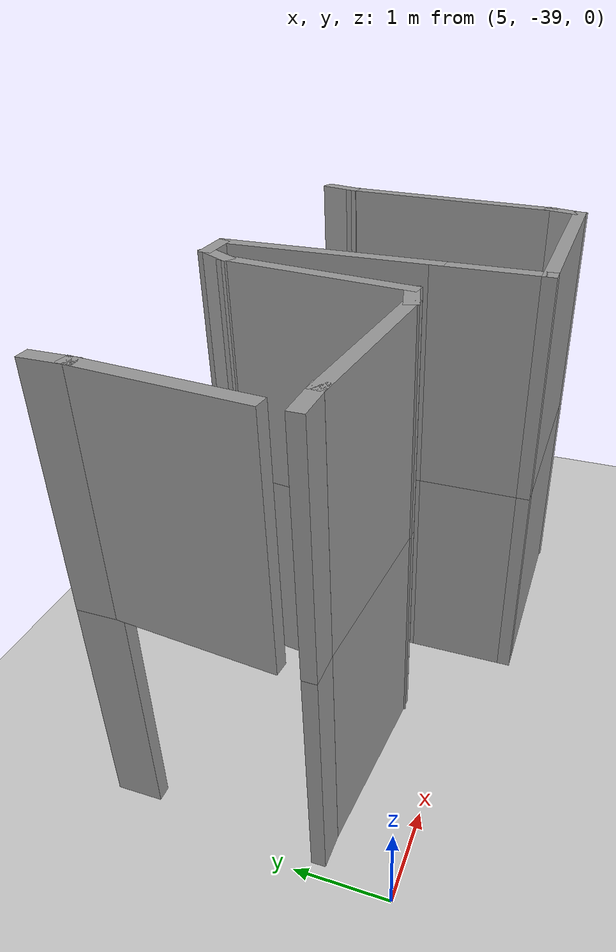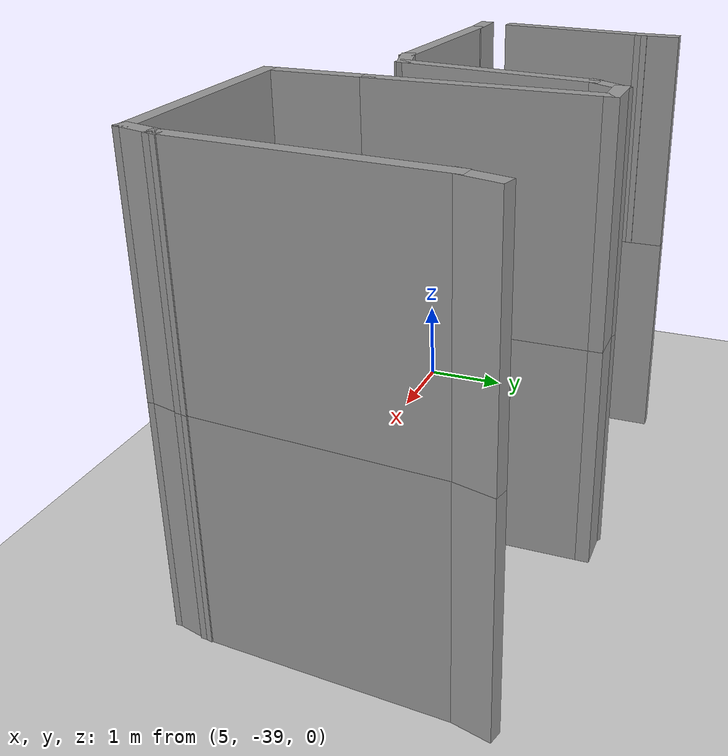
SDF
<sdf version="1.7">
 <world name="default">
  <model name="ground_plane">
   <static>1</static>
   <link name="link">
    <collision name="collision">
     <geometry><plane><normal>0 0 1</normal><size>100 100</size></plane></geometry>
     <surface>
      <contact><collide_bitmask>65535</collide_bitmask></contact>
      <friction><ode><mu>100</mu><mu2>50</mu2></ode></friction>
     </surface>
    </collision>
    <visual name="visual">
     <cast_shadows>0</cast_shadows>
     <geometry><plane><normal>0 0 1</normal><size>100 100</size></plane></geometry>
     <material>
      <script><uri>file://media/materials/scripts/gazebo.material</uri><name>Gazebo/Grey</name></script>
     </material>
    </visual>
   </link>
  </model>
  <model name="EnvDC01">
   <link name="Wall_219">
    <pose>4.62798 -30.0776 0 0 0 -1.8326</pose>
    <visual name="Wall_219_Visual">
     <pose>0 0 1.25 0 -0 0</pose>
     <geometry><box><size>0.5 0.15 2.5</size></box></geometry>
     <material>
      <script><uri>file://media/materials/scripts/gazebo.material</uri><name>Gazebo/Grey</name></script>
      <ambient>1 1 1 1</ambient>
      <shader type="pixel"/>
     </material>
     <meta><layer>0</layer></meta>
    </visual>
    <collision name="Wall_219_Collision">
     <pose>0 0 1.25 0 -0 0</pose>
     <geometry><box><size>0.5 0.15 2.5</size></box></geometry>
     <surface>
      <friction>
       <ode><mu>1</mu><mu2>1</mu2><fdir1>0 0 0</fdir1><slip1>0</slip1><slip2>0</slip2></ode>
       <torsional>
        <coefficient>1</coefficient>
        <patch_radius>0</patch_radius>
        <surface_radius>0</surface_radius>
        <use_patch_radius>1</use_patch_radius>
        <ode><slip>0</slip></ode>
       </torsional>
      </friction>
      <bounce><restitution_coefficient>0</restitution_coefficient><threshold>1e+06</threshold></bounce>
      <contact>
       <collide_without_contact>0</collide_without_contact>
       <collide_without_contact_bitmask>1</collide_without_contact_bitmask>
       <collide_bitmask>1</collide_bitmask>
       <ode>
        <soft_cfm>0</soft_cfm>
        <soft_erp>0.2</soft_erp>
        <kp>1e+13</kp>
        <kd>1</kd>
        <max_vel>0.01</max_vel>
        <min_depth>0</min_depth>
       </ode>
       <bullet>
        <split_impulse>1</split_impulse>
        <split_impulse_penetration_threshold>-0.01</split_impulse_penetration_threshold>
        <soft_cfm>0</soft_cfm>
        <soft_erp>0.2</soft_erp>
        <kp>1e+13</kp>
        <kd>1</kd>
       </bullet>
      </contact>
     </surface>
    </collision>
   </link>
   <link name="Wall_220">
    <pose>4.48563 -31.5338 0 0 0 -1.64605</pose>
    <visual name="Wall_220_Visual">
     <pose>0 0 1.25 0 -0 0</pose>
     <geometry><box><size>2.73175 0.15 2.5</size></box></geometry>
     <material>
      <script><uri>file://media/materials/scripts/gazebo.material</uri><name>Gazebo/Grey</name></script>
      <ambient>1 1 1 1</ambient>
      <shader type="pixel"/>
     </material>
     <meta><layer>0</layer></meta>
    </visual>
    <collision name="Wall_220_Collision">
     <pose>0 0 1.25 0 -0 0</pose>
     <geometry><box><size>2.73175 0.15 2.5</size></box></geometry>
     <surface>
      <friction>
       <ode><mu>1</mu><mu2>1</mu2><fdir1>0 0 0</fdir1><slip1>0</slip1><slip2>0</slip2></ode>
       <torsional>
        <coefficient>1</coefficient>
        <patch_radius>0</patch_radius>
        <surface_radius>0</surface_radius>
        <use_patch_radius>1</use_patch_radius>
        <ode><slip>0</slip></ode>
       </torsional>
      </friction>
      <bounce><restitution_coefficient>0</restitution_coefficient><threshold>1e+06</threshold></bounce>
      <contact>
       <collide_without_contact>0</collide_without_contact>
       <collide_without_contact_bitmask>1</collide_without_contact_bitmask>
       <collide_bitmask>1</collide_bitmask>
       <ode>
        <soft_cfm>0</soft_cfm>
        <soft_erp>0.2</soft_erp>
        <kp>1e+13</kp>
        <kd>1</kd>
        <max_vel>0.01</max_vel>
        <min_depth>0</min_depth>
       </ode>
       <bullet>
        <split_impulse>1</split_impulse>
        <split_impulse_penetration_threshold>-0.01</split_impulse_penetration_threshold>
        <soft_cfm>0</soft_cfm>
        <soft_erp>0.2</soft_erp>
        <kp>1e+13</kp>
        <kd>1</kd>
       </bullet>
      </contact>
     </surface>
    </collision>
   </link>
   <link name="Wall_221">
    <pose>4.34328 -32.9901 0 0 0 -1.8326</pose>
    <visual name="Wall_221_Visual">
     <pose>0 0 1.25 0 -0 0</pose>
     <geometry><box><size>0.5 0.15 2.5</size></box></geometry>
     <material>
      <script><uri>file://media/materials/scripts/gazebo.material</uri><name>Gazebo/Grey</name></script>
      <ambient>1 1 1 1</ambient>
      <shader type="pixel"/>
     </material>
     <meta><layer>0</layer></meta>
    </visual>
    <collision name="Wall_221_Collision">
     <pose>0 0 1.25 0 -0 0</pose>
     <geometry><box><size>0.5 0.15 2.5</size></box></geometry>
     <surface>
      <friction>
       <ode><mu>1</mu><mu2>1</mu2><fdir1>0 0 0</fdir1><slip1>0</slip1><slip2>0</slip2></ode>
       <torsional>
        <coefficient>1</coefficient>
        <patch_radius>0</patch_radius>
        <surface_radius>0</surface_radius>
        <use_patch_radius>1</use_patch_radius>
        <ode><slip>0</slip></ode>
       </torsional>
      </friction>
      <bounce><restitution_coefficient>0</restitution_coefficient><threshold>1e+06</threshold></bounce>
      <contact>
       <collide_without_contact>0</collide_without_contact>
       <collide_without_contact_bitmask>1</collide_without_contact_bitmask>
       <collide_bitmask>1</collide_bitmask>
       <ode>
        <soft_cfm>0</soft_cfm>
        <soft_erp>0.2</soft_erp>
        <kp>1e+13</kp>
        <kd>1</kd>
        <max_vel>0.01</max_vel>
        <min_depth>0</min_depth>
       </ode>
       <bullet>
        <split_impulse>1</split_impulse>
        <split_impulse_penetration_threshold>-0.01</split_impulse_penetration_threshold>
        <soft_cfm>0</soft_cfm>
        <soft_erp>0.2</soft_erp>
        <kp>1e+13</kp>
        <kd>1</kd>
       </bullet>
      </contact>
     </surface>
    </collision>
   </link>
   <link name="Wall_222">
    <pose>3.12299 -33.1591 0 0 -0 3.14159</pose>
    <visual name="Wall_222_Visual">
     <pose>0 0 1.25 0 -0 0</pose>
     <geometry><box><size>2.5 0.15 2.5</size></box></geometry>
     <material>
      <script><uri>file://media/materials/scripts/gazebo.material</uri><name>Gazebo/Grey</name></script>
      <ambient>1 1 1 1</ambient>
      <shader type="pixel"/>
     </material>
     <meta><layer>0</layer></meta>
    </visual>
    <collision name="Wall_222_Collision">
     <pose>0 0 1.25 0 -0 0</pose>
     <geometry><box><size>2.5 0.15 2.5</size></box></geometry>
     <surface>
      <friction>
       <ode><mu>1</mu><mu2>1</mu2><fdir1>0 0 0</fdir1><slip1>0</slip1><slip2>0</slip2></ode>
       <torsional>
        <coefficient>1</coefficient>
        <patch_radius>0</patch_radius>
        <surface_radius>0</surface_radius>
        <use_patch_radius>1</use_patch_radius>
        <ode><slip>0</slip></ode>
       </torsional>
      </friction>
      <bounce><restitution_coefficient>0</restitution_coefficient><threshold>1e+06</threshold></bounce>
      <contact>
       <collide_without_contact>0</collide_without_contact>
       <collide_without_contact_bitmask>1</collide_without_contact_bitmask>
       <collide_bitmask>1</collide_bitmask>
       <ode>
        <soft_cfm>0</soft_cfm>
        <soft_erp>0.2</soft_erp>
        <kp>1e+13</kp>
        <kd>1</kd>
        <max_vel>0.01</max_vel>
        <min_depth>0</min_depth>
       </ode>
       <bullet>
        <split_impulse>1</split_impulse>
        <split_impulse_penetration_threshold>-0.01</split_impulse_penetration_threshold>
        <soft_cfm>0</soft_cfm>
        <soft_erp>0.2</soft_erp>
        <kp>1e+13</kp>
        <kd>1</kd>
       </bullet>
      </contact>
     </surface>
    </collision>
   </link>
   <link name="Wall_223">
    <pose>1.94799 -32.6091 0 0 -0 1.5708</pose>
    <visual name="Wall_223_Visual">
     <pose>0 0 1.25 0 -0 0</pose>
     <geometry><box><size>1.25 0.15 2.5</size></box></geometry>
     <material>
      <script><uri>file://media/materials/scripts/gazebo.material</uri><name>Gazebo/Grey</name></script>
      <ambient>1 1 1 1</ambient>
      <shader type="pixel"/>
     </material>
     <meta><layer>0</layer></meta>
    </visual>
    <collision name="Wall_223_Collision">
     <pose>0 0 1.25 0 -0 0</pose>
     <geometry><box><size>1.25 0.15 2.5</size></box></geometry>
     <surface>
      <friction>
       <ode><mu>1</mu><mu2>1</mu2><fdir1>0 0 0</fdir1><slip1>0</slip1><slip2>0</slip2></ode>
       <torsional>
        <coefficient>1</coefficient>
        <patch_radius>0</patch_radius>
        <surface_radius>0</surface_radius>
        <use_patch_radius>1</use_patch_radius>
        <ode><slip>0</slip></ode>
       </torsional>
      </friction>
      <bounce><restitution_coefficient>0</restitution_coefficient><threshold>1e+06</threshold></bounce>
      <contact>
       <collide_without_contact>0</collide_without_contact>
       <collide_without_contact_bitmask>1</collide_without_contact_bitmask>
       <collide_bitmask>1</collide_bitmask>
       <ode>
        <soft_cfm>0</soft_cfm>
        <soft_erp>0.2</soft_erp>
        <kp>1e+13</kp>
        <kd>1</kd>
        <max_vel>0.01</max_vel>
        <min_depth>0</min_depth>
       </ode>
       <bullet>
        <split_impulse>1</split_impulse>
        <split_impulse_penetration_threshold>-0.01</split_impulse_penetration_threshold>
        <soft_cfm>0</soft_cfm>
        <soft_erp>0.2</soft_erp>
        <kp>1e+13</kp>
        <kd>1</kd>
       </bullet>
      </contact>
     </surface>
    </collision>
   </link>
   <link name="Wall_224">
    <pose>1.94799 -30.8841 0 0 -0 1.5708</pose>
    <visual name="Wall_224_Visual">
     <pose>0 0 1.25 0 -0 0</pose>
     <geometry><box><size>2.5 0.15 2.5</size></box></geometry>
     <material>
      <script><uri>file://media/materials/scripts/gazebo.material</uri><name>Gazebo/Grey</name></script>
      <ambient>1 1 1 1</ambient>
      <shader type="pixel"/>
     </material>
     <meta><layer>0</layer></meta>
    </visual>
    <collision name="Wall_224_Collision">
     <pose>0 0 1.25 0 -0 0</pose>
     <geometry><box><size>2.5 0.15 2.5</size></box></geometry>
     <surface>
      <friction>
       <ode><mu>1</mu><mu2>1</mu2><fdir1>0 0 0</fdir1><slip1>0</slip1><slip2>0</slip2></ode>
       <torsional>
        <coefficient>1</coefficient>
        <patch_radius>0</patch_radius>
        <surface_radius>0</surface_radius>
        <use_patch_radius>1</use_patch_radius>
        <ode><slip>0</slip></ode>
       </torsional>
      </friction>
      <bounce><restitution_coefficient>0</restitution_coefficient><threshold>1e+06</threshold></bounce>
      <contact>
       <collide_without_contact>0</collide_without_contact>
       <collide_without_contact_bitmask>1</collide_without_contact_bitmask>
       <collide_bitmask>1</collide_bitmask>
       <ode>
        <soft_cfm>0</soft_cfm>
        <soft_erp>0.2</soft_erp>
        <kp>1e+13</kp>
        <kd>1</kd>
        <max_vel>0.01</max_vel>
        <min_depth>0</min_depth>
       </ode>
       <bullet>
        <split_impulse>1</split_impulse>
        <split_impulse_penetration_threshold>-0.01</split_impulse_penetration_threshold>
        <soft_cfm>0</soft_cfm>
        <soft_erp>0.2</soft_erp>
        <kp>1e+13</kp>
        <kd>1</kd>
       </bullet>
      </contact>
     </surface>
    </collision>
   </link>
   <link name="Wall_227">
    <pose>1.77299 -29.7091 0 0 -0 3.14159</pose>
    <visual name="Wall_227_Visual">
     <pose>0 0 1.25 0 -0 0</pose>
     <geometry><box><size>0.5 0.15 2.5</size></box></geometry>
     <material>
      <script><uri>file://media/materials/scripts/gazebo.material</uri><name>Gazebo/Grey</name></script>
      <ambient>1 1 1 1</ambient>
      <shader type="pixel"/>
     </material>
     <meta><layer>0</layer></meta>
    </visual>
    <collision name="Wall_227_Collision">
     <pose>0 0 1.25 0 -0 0</pose>
     <geometry><box><size>0.5 0.15 2.5</size></box></geometry>
     <surface>
      <friction>
       <ode><mu>1</mu><mu2>1</mu2><fdir1>0 0 0</fdir1><slip1>0</slip1><slip2>0</slip2></ode>
       <torsional>
        <coefficient>1</coefficient>
        <patch_radius>0</patch_radius>
        <surface_radius>0</surface_radius>
        <use_patch_radius>1</use_patch_radius>
        <ode><slip>0</slip></ode>
       </torsional>
      </friction>
      <bounce><restitution_coefficient>0</restitution_coefficient><threshold>1e+06</threshold></bounce>
      <contact>
       <collide_without_contact>0</collide_without_contact>
       <collide_without_contact_bitmask>1</collide_without_contact_bitmask>
       <collide_bitmask>1</collide_bitmask>
       <ode>
        <soft_cfm>0</soft_cfm>
        <soft_erp>0.2</soft_erp>
        <kp>1e+13</kp>
        <kd>1</kd>
        <max_vel>0.01</max_vel>
        <min_depth>0</min_depth>
       </ode>
       <bullet>
        <split_impulse>1</split_impulse>
        <split_impulse_penetration_threshold>-0.01</split_impulse_penetration_threshold>
        <soft_cfm>0</soft_cfm>
        <soft_erp>0.2</soft_erp>
        <kp>1e+13</kp>
        <kd>1</kd>
       </bullet>
      </contact>
     </surface>
    </collision>
   </link>
   <link name="Wall_228">
    <pose>1.51049 -29.8607 0 0 0 -2.0944</pose>
    <visual name="Wall_228_Visual">
     <pose>0 0 1.25 0 -0 0</pose>
     <geometry><box><size>0.5 0.15 2.5</size></box></geometry>
     <material>
      <script><uri>file://media/materials/scripts/gazebo.material</uri><name>Gazebo/Grey</name></script>
      <ambient>1 1 1 1</ambient>
      <shader type="pixel"/>
     </material>
     <meta><layer>0</layer></meta>
    </visual>
    <collision name="Wall_228_Collision">
     <pose>0 0 1.25 0 -0 0</pose>
     <geometry><box><size>0.5 0.15 2.5</size></box></geometry>
     <surface>
      <friction>
       <ode><mu>1</mu><mu2>1</mu2><fdir1>0 0 0</fdir1><slip1>0</slip1><slip2>0</slip2></ode>
       <torsional>
        <coefficient>1</coefficient>
        <patch_radius>0</patch_radius>
        <surface_radius>0</surface_radius>
        <use_patch_radius>1</use_patch_radius>
        <ode><slip>0</slip></ode>
       </torsional>
      </friction>
      <bounce><restitution_coefficient>0</restitution_coefficient><threshold>1e+06</threshold></bounce>
      <contact>
       <collide_without_contact>0</collide_without_contact>
       <collide_without_contact_bitmask>1</collide_without_contact_bitmask>
       <collide_bitmask>1</collide_bitmask>
       <ode>
        <soft_cfm>0</soft_cfm>
        <soft_erp>0.2</soft_erp>
        <kp>1e+13</kp>
        <kd>1</kd>
        <max_vel>0.01</max_vel>
        <min_depth>0</min_depth>
       </ode>
       <bullet>
        <split_impulse>1</split_impulse>
        <split_impulse_penetration_threshold>-0.01</split_impulse_penetration_threshold>
        <soft_cfm>0</soft_cfm>
        <soft_erp>0.2</soft_erp>
        <kp>1e+13</kp>
        <kd>1</kd>
       </bullet>
      </contact>
     </surface>
    </collision>
   </link>
   <link name="Wall_229">
    <pose>1.29203 -31.0169 0 0 0 -1.70042</pose>
    <visual name="Wall_229_Visual">
     <pose>0 0 1.25 0 -0 0</pose>
     <geometry><box><size>2.17641 0.15 2.5</size></box></geometry>
     <material>
      <script><uri>file://media/materials/scripts/gazebo.material</uri><name>Gazebo/Grey</name></script>
      <ambient>1 1 1 1</ambient>
      <shader type="pixel"/>
     </material>
     <meta><layer>0</layer></meta>
    </visual>
    <collision name="Wall_229_Collision">
     <pose>0 0 1.25 0 -0 0</pose>
     <geometry><box><size>2.17641 0.15 2.5</size></box></geometry>
     <surface>
      <friction>
       <ode><mu>1</mu><mu2>1</mu2><fdir1>0 0 0</fdir1><slip1>0</slip1><slip2>0</slip2></ode>
       <torsional>
        <coefficient>1</coefficient>
        <patch_radius>0</patch_radius>
        <surface_radius>0</surface_radius>
        <use_patch_radius>1</use_patch_radius>
        <ode><slip>0</slip></ode>
       </torsional>
      </friction>
      <bounce><restitution_coefficient>0</restitution_coefficient><threshold>1e+06</threshold></bounce>
      <contact>
       <collide_without_contact>0</collide_without_contact>
       <collide_without_contact_bitmask>1</collide_without_contact_bitmask>
       <collide_bitmask>1</collide_bitmask>
       <ode>
        <soft_cfm>0</soft_cfm>
        <soft_erp>0.2</soft_erp>
        <kp>1e+13</kp>
        <kd>1</kd>
        <max_vel>0.01</max_vel>
        <min_depth>0</min_depth>
       </ode>
       <bullet>
        <split_impulse>1</split_impulse>
        <split_impulse_penetration_threshold>-0.01</split_impulse_penetration_threshold>
        <soft_cfm>0</soft_cfm>
        <soft_erp>0.2</soft_erp>
        <kp>1e+13</kp>
        <kd>1</kd>
       </bullet>
      </contact>
     </surface>
    </collision>
   </link>
   <link name="Wall_230">
    <pose>0.992028 -32.0669 0 0 0 -2.87979</pose>
    <visual name="Wall_230_Visual">
     <pose>0 0 1.25 0 -0 0</pose>
     <geometry><box><size>0.5 0.15 2.5</size></box></geometry>
     <material>
      <script><uri>file://media/materials/scripts/gazebo.material</uri><name>Gazebo/Grey</name></script>
      <ambient>1 1 1 1</ambient>
      <shader type="pixel"/>
     </material>
     <meta><layer>0</layer></meta>
    </visual>
    <collision name="Wall_230_Collision">
     <pose>0 0 1.25 0 -0 0</pose>
     <geometry><box><size>0.5 0.15 2.5</size></box></geometry>
     <surface>
      <friction>
       <ode><mu>1</mu><mu2>1</mu2><fdir1>0 0 0</fdir1><slip1>0</slip1><slip2>0</slip2></ode>
       <torsional>
        <coefficient>1</coefficient>
        <patch_radius>0</patch_radius>
        <surface_radius>0</surface_radius>
        <use_patch_radius>1</use_patch_radius>
        <ode><slip>0</slip></ode>
       </torsional>
      </friction>
      <bounce><restitution_coefficient>0</restitution_coefficient><threshold>1e+06</threshold></bounce>
      <contact>
       <collide_without_contact>0</collide_without_contact>
       <collide_without_contact_bitmask>1</collide_without_contact_bitmask>
       <collide_bitmask>1</collide_bitmask>
       <ode>
        <soft_cfm>0</soft_cfm>
        <soft_erp>0.2</soft_erp>
        <kp>1e+13</kp>
        <kd>1</kd>
        <max_vel>0.01</max_vel>
        <min_depth>0</min_depth>
       </ode>
       <bullet>
        <split_impulse>1</split_impulse>
        <split_impulse_penetration_threshold>-0.01</split_impulse_penetration_threshold>
        <soft_cfm>0</soft_cfm>
        <soft_erp>0.2</soft_erp>
        <kp>1e+13</kp>
        <kd>1</kd>
       </bullet>
      </contact>
     </surface>
    </collision>
   </link>
   <link name="Wall_232">
    <pose>-0.088565 -32.041 0 0 -0 3.06364</pose>
    <visual name="Wall_232_Visual">
     <pose>0 0 1.25 0 -0 0</pose>
     <geometry><box><size>1.97866 0.15 2.5</size></box></geometry>
     <material>
      <script><uri>file://media/materials/scripts/gazebo.material</uri><name>Gazebo/Grey</name></script>
      <ambient>1 1 1 1</ambient>
      <shader type="pixel"/>
     </material>
     <meta><layer>0</layer></meta>
    </visual>
    <collision name="Wall_232_Collision">
     <pose>0 0 1.25 0 -0 0</pose>
     <geometry><box><size>1.97866 0.15 2.5</size></box></geometry>
     <surface>
      <friction>
       <ode><mu>1</mu><mu2>1</mu2><fdir1>0 0 0</fdir1><slip1>0</slip1><slip2>0</slip2></ode>
       <torsional>
        <coefficient>1</coefficient>
        <patch_radius>0</patch_radius>
        <surface_radius>0</surface_radius>
        <use_patch_radius>1</use_patch_radius>
        <ode><slip>0</slip></ode>
       </torsional>
      </friction>
      <bounce><restitution_coefficient>0</restitution_coefficient><threshold>1e+06</threshold></bounce>
      <contact>
       <collide_without_contact>0</collide_without_contact>
       <collide_without_contact_bitmask>1</collide_without_contact_bitmask>
       <collide_bitmask>1</collide_bitmask>
       <ode>
        <soft_cfm>0</soft_cfm>
        <soft_erp>0.2</soft_erp>
        <kp>1e+13</kp>
        <kd>1</kd>
        <max_vel>0.01</max_vel>
        <min_depth>0</min_depth>
       </ode>
       <bullet>
        <split_impulse>1</split_impulse>
        <split_impulse_penetration_threshold>-0.01</split_impulse_penetration_threshold>
        <soft_cfm>0</soft_cfm>
        <soft_erp>0.2</soft_erp>
        <kp>1e+13</kp>
        <kd>1</kd>
       </bullet>
      </contact>
     </surface>
    </collision>
   </link>
   <link name="Wall_233">
    <pose>-1.17512 -31.9634 0 0 -0 3.14159</pose>
    <visual name="Wall_233_Visual">
     <pose>0 0 1.25 0 -0 0</pose>
     <geometry><box><size>0.5 0.15 2.5</size></box></geometry>
     <material>
      <script><uri>file://media/materials/scripts/gazebo.material</uri><name>Gazebo/Grey</name></script>
      <ambient>1 1 1 1</ambient>
      <shader type="pixel"/>
     </material>
     <meta><layer>0</layer></meta>
    </visual>
    <collision name="Wall_233_Collision">
     <pose>0 0 1.25 0 -0 0</pose>
     <geometry><box><size>0.5 0.15 2.5</size></box></geometry>
     <surface>
      <friction>
       <ode><mu>1</mu><mu2>1</mu2><fdir1>0 0 0</fdir1><slip1>0</slip1><slip2>0</slip2></ode>
       <torsional>
        <coefficient>1</coefficient>
        <patch_radius>0</patch_radius>
        <surface_radius>0</surface_radius>
        <use_patch_radius>1</use_patch_radius>
        <ode><slip>0</slip></ode>
       </torsional>
      </friction>
      <bounce><restitution_coefficient>0</restitution_coefficient><threshold>1e+06</threshold></bounce>
      <contact>
       <collide_without_contact>0</collide_without_contact>
       <collide_without_contact_bitmask>1</collide_without_contact_bitmask>
       <collide_bitmask>1</collide_bitmask>
       <ode>
        <soft_cfm>0</soft_cfm>
        <soft_erp>0.2</soft_erp>
        <kp>1e+13</kp>
        <kd>1</kd>
        <max_vel>0.01</max_vel>
        <min_depth>0</min_depth>
       </ode>
       <bullet>
        <split_impulse>1</split_impulse>
        <split_impulse_penetration_threshold>-0.01</split_impulse_penetration_threshold>
        <soft_cfm>0</soft_cfm>
        <soft_erp>0.2</soft_erp>
        <kp>1e+13</kp>
        <kd>1</kd>
       </bullet>
      </contact>
     </surface>
    </collision>
   </link>
   <link name="Wall_237">
    <pose>-1.19483 -29.8588 0 0 -0 1.5708</pose>
    <visual name="Wall_237_Visual">
     <pose>0 0 1.25 0 -0 0</pose>
     <geometry><box><size>0.5 0.15 2.5</size></box></geometry>
     <material>
      <script><uri>file://media/materials/scripts/gazebo.material</uri><name>Gazebo/Grey</name></script>
      <ambient>1 1 1 1</ambient>
      <shader type="pixel"/>
     </material>
     <meta><layer>0</layer></meta>
    </visual>
    <collision name="Wall_237_Collision">
     <pose>0 0 1.25 0 -0 0</pose>
     <geometry><box><size>0.5 0.15 2.5</size></box></geometry>
     <surface>
      <friction>
       <ode><mu>1</mu><mu2>1</mu2><fdir1>0 0 0</fdir1><slip1>0</slip1><slip2>0</slip2></ode>
       <torsional>
        <coefficient>1</coefficient>
        <patch_radius>0</patch_radius>
        <surface_radius>0</surface_radius>
        <use_patch_radius>1</use_patch_radius>
        <ode><slip>0</slip></ode>
       </torsional>
      </friction>
      <bounce><restitution_coefficient>0</restitution_coefficient><threshold>1e+06</threshold></bounce>
      <contact>
       <collide_without_contact>0</collide_without_contact>
       <collide_without_contact_bitmask>1</collide_without_contact_bitmask>
       <collide_bitmask>1</collide_bitmask>
       <ode>
        <soft_cfm>0</soft_cfm>
        <soft_erp>0.2</soft_erp>
        <kp>1e+13</kp>
        <kd>1</kd>
        <max_vel>0.01</max_vel>
        <min_depth>0</min_depth>
       </ode>
       <bullet>
        <split_impulse>1</split_impulse>
        <split_impulse_penetration_threshold>-0.01</split_impulse_penetration_threshold>
        <soft_cfm>0</soft_cfm>
        <soft_erp>0.2</soft_erp>
        <kp>1e+13</kp>
        <kd>1</kd>
       </bullet>
      </contact>
     </surface>
    </collision>
   </link>
   <link name="Wall_389">
    <pose>4.62798 -30.0776 2.5 0 0 -1.8326</pose>
    <visual name="Wall_389_Visual">
     <pose>0 0 1.25 0 -0 0</pose>
     <geometry><box><size>0.5 0.15 2.5</size></box></geometry>
     <material>
      <script><uri>file://media/materials/scripts/gazebo.material</uri><name>Gazebo/Grey</name></script>
      <ambient>1 1 1 1</ambient>
      <shader type="pixel"/>
     </material>
     <meta><layer>1</layer></meta>
    </visual>
    <collision name="Wall_389_Collision">
     <pose>0 0 1.25 0 -0 0</pose>
     <geometry><box><size>0.5 0.15 2.5</size></box></geometry>
     <surface>
      <friction>
       <ode><mu>1</mu><mu2>1</mu2><fdir1>0 0 0</fdir1><slip1>0</slip1><slip2>0</slip2></ode>
       <torsional>
        <coefficient>1</coefficient>
        <patch_radius>0</patch_radius>
        <surface_radius>0</surface_radius>
        <use_patch_radius>1</use_patch_radius>
        <ode><slip>0</slip></ode>
       </torsional>
      </friction>
      <bounce><restitution_coefficient>0</restitution_coefficient><threshold>1e+06</threshold></bounce>
      <contact>
       <collide_without_contact>0</collide_without_contact>
       <collide_without_contact_bitmask>1</collide_without_contact_bitmask>
       <collide_bitmask>1</collide_bitmask>
       <ode>
        <soft_cfm>0</soft_cfm>
        <soft_erp>0.2</soft_erp>
        <kp>1e+13</kp>
        <kd>1</kd>
        <max_vel>0.01</max_vel>
        <min_depth>0</min_depth>
       </ode>
       <bullet>
        <split_impulse>1</split_impulse>
        <split_impulse_penetration_threshold>-0.01</split_impulse_penetration_threshold>
        <soft_cfm>0</soft_cfm>
        <soft_erp>0.2</soft_erp>
        <kp>1e+13</kp>
        <kd>1</kd>
       </bullet>
      </contact>
     </surface>
    </collision>
   </link>
   <link name="Wall_390">
    <pose>4.48563 -31.5338 2.5 0 0 -1.64605</pose>
    <visual name="Wall_390_Visual">
     <pose>0 0 1.25 0 -0 0</pose>
     <geometry><box><size>2.73175 0.15 2.5</size></box></geometry>
     <material>
      <script><uri>file://media/materials/scripts/gazebo.material</uri><name>Gazebo/Grey</name></script>
      <ambient>1 1 1 1</ambient>
      <shader type="pixel"/>
     </material>
     <meta><layer>1</layer></meta>
    </visual>
    <collision name="Wall_390_Collision">
     <pose>0 0 1.25 0 -0 0</pose>
     <geometry><box><size>2.73175 0.15 2.5</size></box></geometry>
     <surface>
      <friction>
       <ode><mu>1</mu><mu2>1</mu2><fdir1>0 0 0</fdir1><slip1>0</slip1><slip2>0</slip2></ode>
       <torsional>
        <coefficient>1</coefficient>
        <patch_radius>0</patch_radius>
        <surface_radius>0</surface_radius>
        <use_patch_radius>1</use_patch_radius>
        <ode><slip>0</slip></ode>
       </torsional>
      </friction>
      <bounce><restitution_coefficient>0</restitution_coefficient><threshold>1e+06</threshold></bounce>
      <contact>
       <collide_without_contact>0</collide_without_contact>
       <collide_without_contact_bitmask>1</collide_without_contact_bitmask>
       <collide_bitmask>1</collide_bitmask>
       <ode>
        <soft_cfm>0</soft_cfm>
        <soft_erp>0.2</soft_erp>
        <kp>1e+13</kp>
        <kd>1</kd>
        <max_vel>0.01</max_vel>
        <min_depth>0</min_depth>
       </ode>
       <bullet>
        <split_impulse>1</split_impulse>
        <split_impulse_penetration_threshold>-0.01</split_impulse_penetration_threshold>
        <soft_cfm>0</soft_cfm>
        <soft_erp>0.2</soft_erp>
        <kp>1e+13</kp>
        <kd>1</kd>
       </bullet>
      </contact>
     </surface>
    </collision>
   </link>
   <link name="Wall_391">
    <pose>4.34328 -32.9901 2.5 0 0 -1.8326</pose>
    <visual name="Wall_391_Visual">
     <pose>0 0 1.25 0 -0 0</pose>
     <geometry><box><size>0.5 0.15 2.5</size></box></geometry>
     <material>
      <script><uri>file://media/materials/scripts/gazebo.material</uri><name>Gazebo/Grey</name></script>
      <ambient>1 1 1 1</ambient>
      <shader type="pixel"/>
     </material>
     <meta><layer>1</layer></meta>
    </visual>
    <collision name="Wall_391_Collision">
     <pose>0 0 1.25 0 -0 0</pose>
     <geometry><box><size>0.5 0.15 2.5</size></box></geometry>
     <surface>
      <friction>
       <ode><mu>1</mu><mu2>1</mu2><fdir1>0 0 0</fdir1><slip1>0</slip1><slip2>0</slip2></ode>
       <torsional>
        <coefficient>1</coefficient>
        <patch_radius>0</patch_radius>
        <surface_radius>0</surface_radius>
        <use_patch_radius>1</use_patch_radius>
        <ode><slip>0</slip></ode>
       </torsional>
      </friction>
      <bounce><restitution_coefficient>0</restitution_coefficient><threshold>1e+06</threshold></bounce>
      <contact>
       <collide_without_contact>0</collide_without_contact>
       <collide_without_contact_bitmask>1</collide_without_contact_bitmask>
       <collide_bitmask>1</collide_bitmask>
       <ode>
        <soft_cfm>0</soft_cfm>
        <soft_erp>0.2</soft_erp>
        <kp>1e+13</kp>
        <kd>1</kd>
        <max_vel>0.01</max_vel>
        <min_depth>0</min_depth>
       </ode>
       <bullet>
        <split_impulse>1</split_impulse>
        <split_impulse_penetration_threshold>-0.01</split_impulse_penetration_threshold>
        <soft_cfm>0</soft_cfm>
        <soft_erp>0.2</soft_erp>
        <kp>1e+13</kp>
        <kd>1</kd>
       </bullet>
      </contact>
     </surface>
    </collision>
   </link>
   <link name="Wall_392">
    <pose>3.12299 -33.1591 2.5 0 -0 3.14159</pose>
    <visual name="Wall_392_Visual">
     <pose>0 0 1.25 0 -0 0</pose>
     <geometry><box><size>2.5 0.15 2.5</size></box></geometry>
     <material>
      <script><uri>file://media/materials/scripts/gazebo.material</uri><name>Gazebo/Grey</name></script>
      <ambient>1 1 1 1</ambient>
      <shader type="pixel"/>
     </material>
     <meta><layer>1</layer></meta>
    </visual>
    <collision name="Wall_392_Collision">
     <pose>0 0 1.25 0 -0 0</pose>
     <geometry><box><size>2.5 0.15 2.5</size></box></geometry>
     <surface>
      <friction>
       <ode><mu>1</mu><mu2>1</mu2><fdir1>0 0 0</fdir1><slip1>0</slip1><slip2>0</slip2></ode>
       <torsional>
        <coefficient>1</coefficient>
        <patch_radius>0</patch_radius>
        <surface_radius>0</surface_radius>
        <use_patch_radius>1</use_patch_radius>
        <ode><slip>0</slip></ode>
       </torsional>
      </friction>
      <bounce><restitution_coefficient>0</restitution_coefficient><threshold>1e+06</threshold></bounce>
      <contact>
       <collide_without_contact>0</collide_without_contact>
       <collide_without_contact_bitmask>1</collide_without_contact_bitmask>
       <collide_bitmask>1</collide_bitmask>
       <ode>
        <soft_cfm>0</soft_cfm>
        <soft_erp>0.2</soft_erp>
        <kp>1e+13</kp>
        <kd>1</kd>
        <max_vel>0.01</max_vel>
        <min_depth>0</min_depth>
       </ode>
       <bullet>
        <split_impulse>1</split_impulse>
        <split_impulse_penetration_threshold>-0.01</split_impulse_penetration_threshold>
        <soft_cfm>0</soft_cfm>
        <soft_erp>0.2</soft_erp>
        <kp>1e+13</kp>
        <kd>1</kd>
       </bullet>
      </contact>
     </surface>
    </collision>
   </link>
   <link name="Wall_393">
    <pose>1.94799 -32.6091 2.5 0 -0 1.5708</pose>
    <visual name="Wall_393_Visual">
     <pose>0 0 1.25 0 -0 0</pose>
     <geometry><box><size>1.25 0.15 2.5</size></box></geometry>
     <material>
      <script><uri>file://media/materials/scripts/gazebo.material</uri><name>Gazebo/Grey</name></script>
      <ambient>1 1 1 1</ambient>
      <shader type="pixel"/>
     </material>
     <meta><layer>1</layer></meta>
    </visual>
    <collision name="Wall_393_Collision">
     <pose>0 0 1.25 0 -0 0</pose>
     <geometry><box><size>1.25 0.15 2.5</size></box></geometry>
     <surface>
      <friction>
       <ode><mu>1</mu><mu2>1</mu2><fdir1>0 0 0</fdir1><slip1>0</slip1><slip2>0</slip2></ode>
       <torsional>
        <coefficient>1</coefficient>
        <patch_radius>0</patch_radius>
        <surface_radius>0</surface_radius>
        <use_patch_radius>1</use_patch_radius>
        <ode><slip>0</slip></ode>
       </torsional>
      </friction>
      <bounce><restitution_coefficient>0</restitution_coefficient><threshold>1e+06</threshold></bounce>
      <contact>
       <collide_without_contact>0</collide_without_contact>
       <collide_without_contact_bitmask>1</collide_without_contact_bitmask>
       <collide_bitmask>1</collide_bitmask>
       <ode>
        <soft_cfm>0</soft_cfm>
        <soft_erp>0.2</soft_erp>
        <kp>1e+13</kp>
        <kd>1</kd>
        <max_vel>0.01</max_vel>
        <min_depth>0</min_depth>
       </ode>
       <bullet>
        <split_impulse>1</split_impulse>
        <split_impulse_penetration_threshold>-0.01</split_impulse_penetration_threshold>
        <soft_cfm>0</soft_cfm>
        <soft_erp>0.2</soft_erp>
        <kp>1e+13</kp>
        <kd>1</kd>
       </bullet>
      </contact>
     </surface>
    </collision>
   </link>
   <link name="Wall_394">
    <pose>1.94799 -30.8841 2.5 0 -0 1.5708</pose>
    <visual name="Wall_394_Visual">
     <pose>0 0 1.25 0 -0 0</pose>
     <geometry><box><size>2.5 0.15 2.5</size></box></geometry>
     <material>
      <script><uri>file://media/materials/scripts/gazebo.material</uri><name>Gazebo/Grey</name></script>
      <ambient>1 1 1 1</ambient>
      <shader type="pixel"/>
     </material>
     <meta><layer>1</layer></meta>
    </visual>
    <collision name="Wall_394_Collision">
     <pose>0 0 1.25 0 -0 0</pose>
     <geometry><box><size>2.5 0.15 2.5</size></box></geometry>
     <surface>
      <friction>
       <ode><mu>1</mu><mu2>1</mu2><fdir1>0 0 0</fdir1><slip1>0</slip1><slip2>0</slip2></ode>
       <torsional>
        <coefficient>1</coefficient>
        <patch_radius>0</patch_radius>
        <surface_radius>0</surface_radius>
        <use_patch_radius>1</use_patch_radius>
        <ode><slip>0</slip></ode>
       </torsional>
      </friction>
      <bounce><restitution_coefficient>0</restitution_coefficient><threshold>1e+06</threshold></bounce>
      <contact>
       <collide_without_contact>0</collide_without_contact>
       <collide_without_contact_bitmask>1</collide_without_contact_bitmask>
       <collide_bitmask>1</collide_bitmask>
       <ode>
        <soft_cfm>0</soft_cfm>
        <soft_erp>0.2</soft_erp>
        <kp>1e+13</kp>
        <kd>1</kd>
        <max_vel>0.01</max_vel>
        <min_depth>0</min_depth>
       </ode>
       <bullet>
        <split_impulse>1</split_impulse>
        <split_impulse_penetration_threshold>-0.01</split_impulse_penetration_threshold>
        <soft_cfm>0</soft_cfm>
        <soft_erp>0.2</soft_erp>
        <kp>1e+13</kp>
        <kd>1</kd>
       </bullet>
      </contact>
     </surface>
    </collision>
   </link>
   <link name="Wall_395">
    <pose>1.77299 -29.7091 2.5 0 -0 3.14159</pose>
    <visual name="Wall_395_Visual">
     <pose>0 0 1.25 0 -0 0</pose>
     <geometry><box><size>0.5 0.15 2.5</size></box></geometry>
     <material>
      <script><uri>file://media/materials/scripts/gazebo.material</uri><name>Gazebo/Grey</name></script>
      <ambient>1 1 1 1</ambient>
      <shader type="pixel"/>
     </material>
     <meta><layer>1</layer></meta>
    </visual>
    <collision name="Wall_395_Collision">
     <pose>0 0 1.25 0 -0 0</pose>
     <geometry><box><size>0.5 0.15 2.5</size></box></geometry>
     <surface>
      <friction>
       <ode><mu>1</mu><mu2>1</mu2><fdir1>0 0 0</fdir1><slip1>0</slip1><slip2>0</slip2></ode>
       <torsional>
        <coefficient>1</coefficient>
        <patch_radius>0</patch_radius>
        <surface_radius>0</surface_radius>
        <use_patch_radius>1</use_patch_radius>
        <ode><slip>0</slip></ode>
       </torsional>
      </friction>
      <bounce><restitution_coefficient>0</restitution_coefficient><threshold>1e+06</threshold></bounce>
      <contact>
       <collide_without_contact>0</collide_without_contact>
       <collide_without_contact_bitmask>1</collide_without_contact_bitmask>
       <collide_bitmask>1</collide_bitmask>
       <ode>
        <soft_cfm>0</soft_cfm>
        <soft_erp>0.2</soft_erp>
        <kp>1e+13</kp>
        <kd>1</kd>
        <max_vel>0.01</max_vel>
        <min_depth>0</min_depth>
       </ode>
       <bullet>
        <split_impulse>1</split_impulse>
        <split_impulse_penetration_threshold>-0.01</split_impulse_penetration_threshold>
        <soft_cfm>0</soft_cfm>
        <soft_erp>0.2</soft_erp>
        <kp>1e+13</kp>
        <kd>1</kd>
       </bullet>
      </contact>
     </surface>
    </collision>
   </link>
   <link name="Wall_396">
    <pose>1.51049 -29.8607 2.5 0 0 -2.0944</pose>
    <visual name="Wall_396_Visual">
     <pose>0 0 1.25 0 -0 0</pose>
     <geometry><box><size>0.5 0.15 2.5</size></box></geometry>
     <material>
      <script><uri>file://media/materials/scripts/gazebo.material</uri><name>Gazebo/Grey</name></script>
      <ambient>1 1 1 1</ambient>
      <shader type="pixel"/>
     </material>
     <meta><layer>1</layer></meta>
    </visual>
    <collision name="Wall_396_Collision">
     <pose>0 0 1.25 0 -0 0</pose>
     <geometry><box><size>0.5 0.15 2.5</size></box></geometry>
     <surface>
      <friction>
       <ode><mu>1</mu><mu2>1</mu2><fdir1>0 0 0</fdir1><slip1>0</slip1><slip2>0</slip2></ode>
       <torsional>
        <coefficient>1</coefficient>
        <patch_radius>0</patch_radius>
        <surface_radius>0</surface_radius>
        <use_patch_radius>1</use_patch_radius>
        <ode><slip>0</slip></ode>
       </torsional>
      </friction>
      <bounce><restitution_coefficient>0</restitution_coefficient><threshold>1e+06</threshold></bounce>
      <contact>
       <collide_without_contact>0</collide_without_contact>
       <collide_without_contact_bitmask>1</collide_without_contact_bitmask>
       <collide_bitmask>1</collide_bitmask>
       <ode>
        <soft_cfm>0</soft_cfm>
        <soft_erp>0.2</soft_erp>
        <kp>1e+13</kp>
        <kd>1</kd>
        <max_vel>0.01</max_vel>
        <min_depth>0</min_depth>
       </ode>
       <bullet>
        <split_impulse>1</split_impulse>
        <split_impulse_penetration_threshold>-0.01</split_impulse_penetration_threshold>
        <soft_cfm>0</soft_cfm>
        <soft_erp>0.2</soft_erp>
        <kp>1e+13</kp>
        <kd>1</kd>
       </bullet>
      </contact>
     </surface>
    </collision>
   </link>
   <link name="Wall_397">
    <pose>1.29203 -31.0169 2.5 0 0 -1.70042</pose>
    <visual name="Wall_397_Visual">
     <pose>0 0 1.25 0 -0 0</pose>
     <geometry><box><size>2.17641 0.15 2.5</size></box></geometry>
     <material>
      <script><uri>file://media/materials/scripts/gazebo.material</uri><name>Gazebo/Grey</name></script>
      <ambient>1 1 1 1</ambient>
      <shader type="pixel"/>
     </material>
     <meta><layer>1</layer></meta>
    </visual>
    <collision name="Wall_397_Collision">
     <pose>0 0 1.25 0 -0 0</pose>
     <geometry><box><size>2.17641 0.15 2.5</size></box></geometry>
     <surface>
      <friction>
       <ode><mu>1</mu><mu2>1</mu2><fdir1>0 0 0</fdir1><slip1>0</slip1><slip2>0</slip2></ode>
       <torsional>
        <coefficient>1</coefficient>
        <patch_radius>0</patch_radius>
        <surface_radius>0</surface_radius>
        <use_patch_radius>1</use_patch_radius>
        <ode><slip>0</slip></ode>
       </torsional>
      </friction>
      <bounce><restitution_coefficient>0</restitution_coefficient><threshold>1e+06</threshold></bounce>
      <contact>
       <collide_without_contact>0</collide_without_contact>
       <collide_without_contact_bitmask>1</collide_without_contact_bitmask>
       <collide_bitmask>1</collide_bitmask>
       <ode>
        <soft_cfm>0</soft_cfm>
        <soft_erp>0.2</soft_erp>
        <kp>1e+13</kp>
        <kd>1</kd>
        <max_vel>0.01</max_vel>
        <min_depth>0</min_depth>
       </ode>
       <bullet>
        <split_impulse>1</split_impulse>
        <split_impulse_penetration_threshold>-0.01</split_impulse_penetration_threshold>
        <soft_cfm>0</soft_cfm>
        <soft_erp>0.2</soft_erp>
        <kp>1e+13</kp>
        <kd>1</kd>
       </bullet>
      </contact>
     </surface>
    </collision>
   </link>
   <link name="Wall_398">
    <pose>0.992028 -32.0669 2.5 0 0 -2.87979</pose>
    <visual name="Wall_398_Visual">
     <pose>0 0 1.25 0 -0 0</pose>
     <geometry><box><size>0.5 0.15 2.5</size></box></geometry>
     <material>
      <script><uri>file://media/materials/scripts/gazebo.material</uri><name>Gazebo/Grey</name></script>
      <ambient>1 1 1 1</ambient>
      <shader type="pixel"/>
     </material>
     <meta><layer>1</layer></meta>
    </visual>
    <collision name="Wall_398_Collision">
     <pose>0 0 1.25 0 -0 0</pose>
     <geometry><box><size>0.5 0.15 2.5</size></box></geometry>
     <surface>
      <friction>
       <ode><mu>1</mu><mu2>1</mu2><fdir1>0 0 0</fdir1><slip1>0</slip1><slip2>0</slip2></ode>
       <torsional>
        <coefficient>1</coefficient>
        <patch_radius>0</patch_radius>
        <surface_radius>0</surface_radius>
        <use_patch_radius>1</use_patch_radius>
        <ode><slip>0</slip></ode>
       </torsional>
      </friction>
      <bounce><restitution_coefficient>0</restitution_coefficient><threshold>1e+06</threshold></bounce>
      <contact>
       <collide_without_contact>0</collide_without_contact>
       <collide_without_contact_bitmask>1</collide_without_contact_bitmask>
       <collide_bitmask>1</collide_bitmask>
       <ode>
        <soft_cfm>0</soft_cfm>
        <soft_erp>0.2</soft_erp>
        <kp>1e+13</kp>
        <kd>1</kd>
        <max_vel>0.01</max_vel>
        <min_depth>0</min_depth>
       </ode>
       <bullet>
        <split_impulse>1</split_impulse>
        <split_impulse_penetration_threshold>-0.01</split_impulse_penetration_threshold>
        <soft_cfm>0</soft_cfm>
        <soft_erp>0.2</soft_erp>
        <kp>1e+13</kp>
        <kd>1</kd>
       </bullet>
      </contact>
     </surface>
    </collision>
   </link>
   <link name="Wall_399">
    <pose>-0.088565 -32.041 2.5 0 -0 3.06364</pose>
    <visual name="Wall_399_Visual">
     <pose>0 0 1.25 0 -0 0</pose>
     <geometry><box><size>1.97866 0.15 2.5</size></box></geometry>
     <material>
      <script><uri>file://media/materials/scripts/gazebo.material</uri><name>Gazebo/Grey</name></script>
      <ambient>1 1 1 1</ambient>
      <shader type="pixel"/>
     </material>
     <meta><layer>1</layer></meta>
    </visual>
    <collision name="Wall_399_Collision">
     <pose>0 0 1.25 0 -0 0</pose>
     <geometry><box><size>1.97866 0.15 2.5</size></box></geometry>
     <surface>
      <friction>
       <ode><mu>1</mu><mu2>1</mu2><fdir1>0 0 0</fdir1><slip1>0</slip1><slip2>0</slip2></ode>
       <torsional>
        <coefficient>1</coefficient>
        <patch_radius>0</patch_radius>
        <surface_radius>0</surface_radius>
        <use_patch_radius>1</use_patch_radius>
        <ode><slip>0</slip></ode>
       </torsional>
      </friction>
      <bounce><restitution_coefficient>0</restitution_coefficient><threshold>1e+06</threshold></bounce>
      <contact>
       <collide_without_contact>0</collide_without_contact>
       <collide_without_contact_bitmask>1</collide_without_contact_bitmask>
       <collide_bitmask>1</collide_bitmask>
       <ode>
        <soft_cfm>0</soft_cfm>
        <soft_erp>0.2</soft_erp>
        <kp>1e+13</kp>
        <kd>1</kd>
        <max_vel>0.01</max_vel>
        <min_depth>0</min_depth>
       </ode>
       <bullet>
        <split_impulse>1</split_impulse>
        <split_impulse_penetration_threshold>-0.01</split_impulse_penetration_threshold>
        <soft_cfm>0</soft_cfm>
        <soft_erp>0.2</soft_erp>
        <kp>1e+13</kp>
        <kd>1</kd>
       </bullet>
      </contact>
     </surface>
    </collision>
   </link>
   <link name="Wall_400">
    <pose>-1.17512 -31.9634 2.5 0 -0 3.14159</pose>
    <visual name="Wall_400_Visual">
     <pose>0 0 1.25 0 -0 0</pose>
     <geometry><box><size>0.5 0.15 2.5</size></box></geometry>
     <material>
      <script><uri>file://media/materials/scripts/gazebo.material</uri><name>Gazebo/Grey</name></script>
      <ambient>1 1 1 1</ambient>
      <shader type="pixel"/>
     </material>
     <meta><layer>1</layer></meta>
    </visual>
    <collision name="Wall_400_Collision">
     <pose>0 0 1.25 0 -0 0</pose>
     <geometry><box><size>0.5 0.15 2.5</size></box></geometry>
     <surface>
      <friction>
       <ode><mu>1</mu><mu2>1</mu2><fdir1>0 0 0</fdir1><slip1>0</slip1><slip2>0</slip2></ode>
       <torsional>
        <coefficient>1</coefficient>
        <patch_radius>0</patch_radius>
        <surface_radius>0</surface_radius>
        <use_patch_radius>1</use_patch_radius>
        <ode><slip>0</slip></ode>
       </torsional>
      </friction>
      <bounce><restitution_coefficient>0</restitution_coefficient><threshold>1e+06</threshold></bounce>
      <contact>
       <collide_without_contact>0</collide_without_contact>
       <collide_without_contact_bitmask>1</collide_without_contact_bitmask>
       <collide_bitmask>1</collide_bitmask>
       <ode>
        <soft_cfm>0</soft_cfm>
        <soft_erp>0.2</soft_erp>
        <kp>1e+13</kp>
        <kd>1</kd>
        <max_vel>0.01</max_vel>
        <min_depth>0</min_depth>
       </ode>
       <bullet>
        <split_impulse>1</split_impulse>
        <split_impulse_penetration_threshold>-0.01</split_impulse_penetration_threshold>
        <soft_cfm>0</soft_cfm>
        <soft_erp>0.2</soft_erp>
        <kp>1e+13</kp>
        <kd>1</kd>
       </bullet>
      </contact>
     </surface>
    </collision>
   </link>
   <link name="Wall_402">
    <pose>-1.27248 -30.8236 2.5 0 -0 1.4728</pose>
    <visual name="Wall_402_Visual">
     <pose>0 0 1.25 0 -0 0</pose>
     <geometry><box><size>1.73717 0.15 2.5</size></box></geometry>
     <material>
      <script><uri>file://media/materials/scripts/gazebo.material</uri><name>Gazebo/Grey</name></script>
      <ambient>1 1 1 1</ambient>
      <shader type="pixel"/>
     </material>
     <meta><layer>1</layer></meta>
    </visual>
    <collision name="Wall_402_Collision">
     <pose>0 0 1.25 0 -0 0</pose>
     <geometry><box><size>1.73717 0.15 2.5</size></box></geometry>
     <surface>
      <friction>
       <ode><mu>1</mu><mu2>1</mu2><fdir1>0 0 0</fdir1><slip1>0</slip1><slip2>0</slip2></ode>
       <torsional>
        <coefficient>1</coefficient>
        <patch_radius>0</patch_radius>
        <surface_radius>0</surface_radius>
        <use_patch_radius>1</use_patch_radius>
        <ode><slip>0</slip></ode>
       </torsional>
      </friction>
      <bounce><restitution_coefficient>0</restitution_coefficient><threshold>1e+06</threshold></bounce>
      <contact>
       <collide_without_contact>0</collide_without_contact>
       <collide_without_contact_bitmask>1</collide_without_contact_bitmask>
       <collide_bitmask>1</collide_bitmask>
       <ode>
        <soft_cfm>0</soft_cfm>
        <soft_erp>0.2</soft_erp>
        <kp>1e+13</kp>
        <kd>1</kd>
        <max_vel>0.01</max_vel>
        <min_depth>0</min_depth>
       </ode>
       <bullet>
        <split_impulse>1</split_impulse>
        <split_impulse_penetration_threshold>-0.01</split_impulse_penetration_threshold>
        <soft_cfm>0</soft_cfm>
        <soft_erp>0.2</soft_erp>
        <kp>1e+13</kp>
        <kd>1</kd>
       </bullet>
      </contact>
     </surface>
    </collision>
   </link>
   <link name="Wall_403">
    <pose>-1.19483 -29.8588 2.5 0 -0 1.5708</pose>
    <visual name="Wall_403_Visual">
     <pose>0 0 1.25 0 -0 0</pose>
     <geometry><box><size>0.5 0.15 2.5</size></box></geometry>
     <material>
      <script><uri>file://media/materials/scripts/gazebo.material</uri><name>Gazebo/Grey</name></script>
      <ambient>1 1 1 1</ambient>
      <shader type="pixel"/>
     </material>
     <meta><layer>1</layer></meta>
    </visual>
    <collision name="Wall_403_Collision">
     <pose>0 0 1.25 0 -0 0</pose>
     <geometry><box><size>0.5 0.15 2.5</size></box></geometry>
     <surface>
      <friction>
       <ode><mu>1</mu><mu2>1</mu2><fdir1>0 0 0</fdir1><slip1>0</slip1><slip2>0</slip2></ode>
       <torsional>
        <coefficient>1</coefficient>
        <patch_radius>0</patch_radius>
        <surface_radius>0</surface_radius>
        <use_patch_radius>1</use_patch_radius>
        <ode><slip>0</slip></ode>
       </torsional>
      </friction>
      <bounce><restitution_coefficient>0</restitution_coefficient><threshold>1e+06</threshold></bounce>
      <contact>
       <collide_without_contact>0</collide_without_contact>
       <collide_without_contact_bitmask>1</collide_without_contact_bitmask>
       <collide_bitmask>1</collide_bitmask>
       <ode>
        <soft_cfm>0</soft_cfm>
        <soft_erp>0.2</soft_erp>
        <kp>1e+13</kp>
        <kd>1</kd>
        <max_vel>0.01</max_vel>
        <min_depth>0</min_depth>
       </ode>
       <bullet>
        <split_impulse>1</split_impulse>
        <split_impulse_penetration_threshold>-0.01</split_impulse_penetration_threshold>
        <soft_cfm>0</soft_cfm>
        <soft_erp>0.2</soft_erp>
        <kp>1e+13</kp>
        <kd>1</kd>
       </bullet>
      </contact>
     </surface>
    </collision>
   </link>
   <static>1</static>
   <pose>6.55365 -6.2466 0 0 -0 0</pose>
  </model>
 </world>
</sdf>
